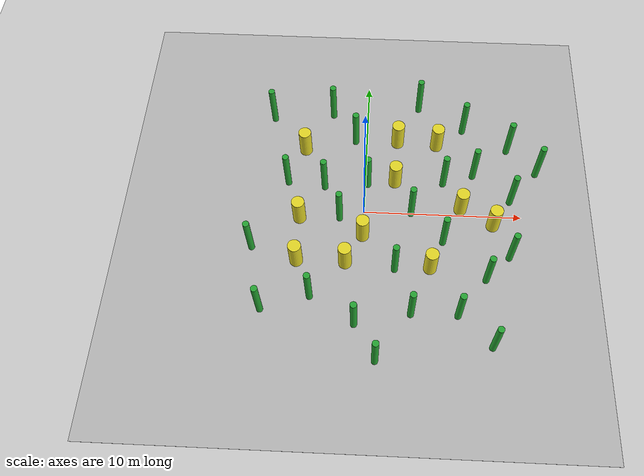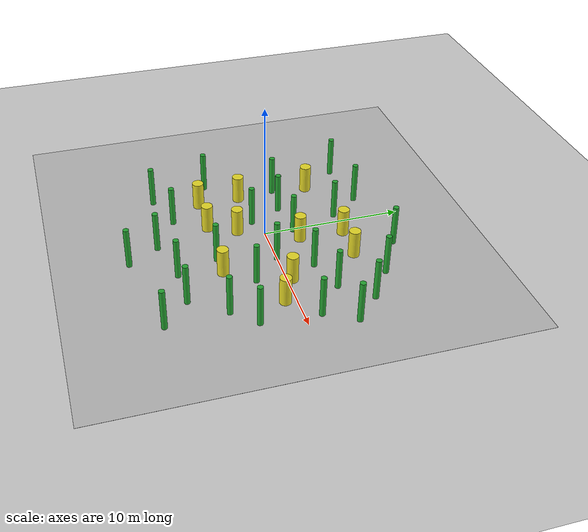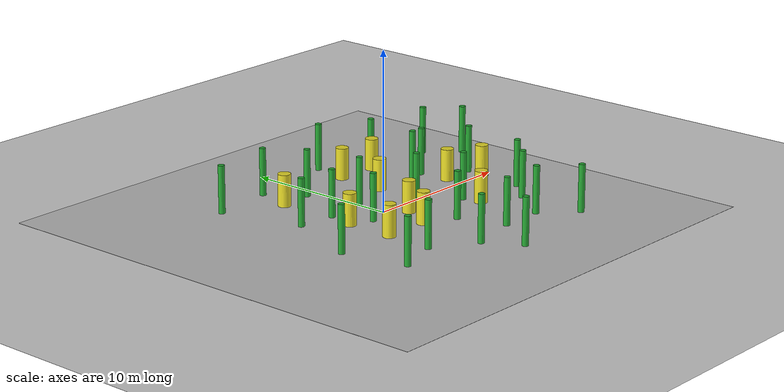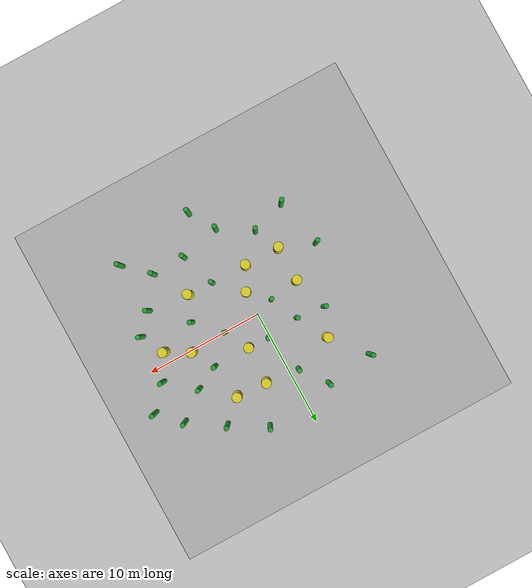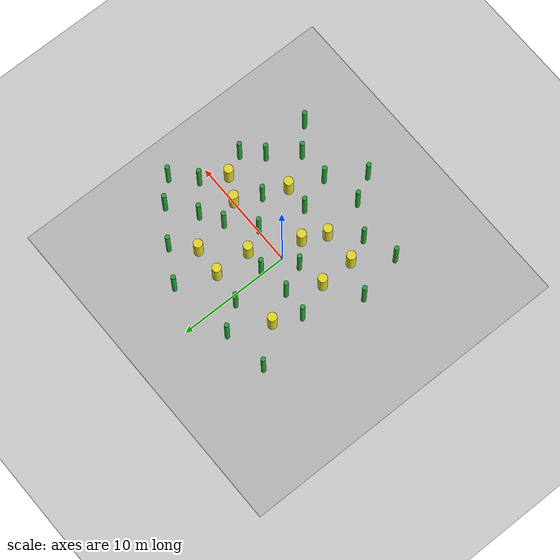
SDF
<sdf version="1.7">
 <world name="default">
  <physics type="ode">
   <ode>
    <solver>
     <type>quick</type>
     <iters>10</iters>
     <sor>1.3</sor>
     <use_dynamic_moi_rescaling>0</use_dynamic_moi_rescaling>
    </solver>
    <constraints>
     <cfm>0</cfm>
     <erp>0.2</erp>
     <contact_max_correcting_vel>100</contact_max_correcting_vel>
     <contact_surface_layer>0.001</contact_surface_layer>
    </constraints>
   </ode>
   <max_step_size>0.004</max_step_size>
   <real_time_factor>1</real_time_factor>
   <real_time_update_rate>250</real_time_update_rate>
  </physics>
  <light name="sun" type="directional">
   <cast_shadows>0</cast_shadows>
   <pose>0 0 100 0 -0 0</pose>
   <diffuse>0.8 0.8 0.8 1</diffuse>
   <specular>0.9 0.9 0.9 1</specular>
   <attenuation>
    <range>1000</range>
    <constant>0.9</constant>
    <linear>0.01</linear>
    <quadratic>0.001</quadratic>
   </attenuation>
   <direction>0.2 0.2 -0.9</direction>
   <spot><inner_angle>0</inner_angle><outer_angle>0</outer_angle><falloff>0</falloff></spot>
  </light>
  <model name="ground_plane">
   <static>1</static>
   <link name="link">
    <collision name="collision">
     <geometry><plane><normal>0 0 1</normal><size>100 100</size></plane></geometry>
     <surface><friction><ode><mu>100</mu><mu2>50</mu2></ode></friction></surface>
    </collision>
    <visual name="visual">
     <cast_shadows>0</cast_shadows>
     <geometry><plane><normal>0 0 1</normal><size>100 100</size></plane></geometry>
     <material>
      <script><uri>file://media/materials/scripts/gazebo.material</uri><name>Gazebo/Grey</name></script>
     </material>
    </visual>
   </link>
  </model>
  <model name="texture">
   <pose>-0.49277 -0.107232 0 0 -0 0</pose>
   <static>1</static>
   <link name="prometheus_logo">
    <visual name="visual">
     <cast_shadows>0</cast_shadows>
     <geometry><box><size>30 30 0.01</size></box></geometry>
     <material>
      <script><uri>model://prometheus_texture/texture.material</uri><name>prometheus_logo2</name></script>
     </material>
    </visual>
   </link>
  </model>
  <model name="cylinder1">
   <frame name="obs_cylinder_small::__model__" attached_to="obs_cylinder_small::link">
    <pose relative_to="__model__">3 0 1.5 0 -0 0</pose>
   </frame>
   <link name="obs_cylinder_small::link">
    <inertial><mass>1</mass></inertial>
    <pose relative_to="obs_cylinder_small::__model__">0 0 0 0 -0 0</pose>
    <visual name="visual">
     <geometry><cylinder><radius>0.2</radius><length>3</length></cylinder></geometry>
     <material>
      <script><name>Gazebo/Green</name><uri>file://media/materials/scripts/gazebo.material</uri></script>
     </material>
    </visual>
    <collision name="collision">
     <geometry><cylinder><radius>0.25</radius><length>3</length></cylinder></geometry>
    </collision>
   </link>
   <static>1</static>
  </model>
  <model name="cylinder7">
   <frame name="obs_cylinder_small::__model__" attached_to="obs_cylinder_small::link">
    <pose relative_to="__model__">7 3 1.5 0 -0 0</pose>
   </frame>
   <link name="obs_cylinder_small::link">
    <inertial><mass>1</mass></inertial>
    <pose relative_to="obs_cylinder_small::__model__">0 0 0 0 -0 0</pose>
    <visual name="visual">
     <geometry><cylinder><radius>0.2</radius><length>3</length></cylinder></geometry>
     <material>
      <script><name>Gazebo/Green</name><uri>file://media/materials/scripts/gazebo.material</uri></script>
     </material>
    </visual>
    <collision name="collision">
     <geometry><cylinder><radius>0.25</radius><length>3</length></cylinder></geometry>
    </collision>
   </link>
   <static>1</static>
  </model>
  <model name="cylinder8">
   <pose>0.219522 1.75082 0 0 -0 0</pose>
   <frame name="obs_cylinder_small::__model__" attached_to="obs_cylinder_small::link">
    <pose relative_to="__model__">9 3 2 0 -0 0</pose>
   </frame>
   <link name="obs_cylinder_small::link">
    <inertial><mass>1</mass></inertial>
    <pose relative_to="obs_cylinder_small::__model__">0 0 0 0 -0 0</pose>
    <visual name="visual">
     <geometry><cylinder><radius>0.2</radius><length>3</length></cylinder></geometry>
     <material>
      <script><name>Gazebo/Green</name><uri>file://media/materials/scripts/gazebo.material</uri></script>
     </material>
    </visual>
    <collision name="collision">
     <geometry><cylinder><radius>0.25</radius><length>3</length></cylinder></geometry>
    </collision>
   </link>
   <static>1</static>
  </model>
  <model name="cylinder9">
   <frame name="obs_cylinder_small::__model__" attached_to="obs_cylinder_small::link">
    <pose relative_to="__model__">11 3 2 0 -0 0</pose>
   </frame>
   <link name="obs_cylinder_small::link">
    <inertial><mass>1</mass></inertial>
    <pose relative_to="obs_cylinder_small::__model__">0 0 0 0 -0 0</pose>
    <visual name="visual">
     <geometry><cylinder><radius>0.2</radius><length>3</length></cylinder></geometry>
     <material>
      <script><name>Gazebo/Green</name><uri>file://media/materials/scripts/gazebo.material</uri></script>
     </material>
    </visual>
    <collision name="collision">
     <geometry><cylinder><radius>0.25</radius><length>3</length></cylinder></geometry>
    </collision>
   </link>
   <static>1</static>
  </model>
  <model name="cylinder2">
   <frame name="obs_cylinder_small::__model__" attached_to="obs_cylinder_small::link">
    <pose relative_to="__model__">5 2 2 0 -0 0</pose>
   </frame>
   <link name="obs_cylinder_small::link">
    <inertial><mass>1</mass></inertial>
    <pose relative_to="obs_cylinder_small::__model__">0 0 0 0 -0 0</pose>
    <visual name="visual">
     <geometry><cylinder><radius>0.2</radius><length>3</length></cylinder></geometry>
     <material>
      <script><name>Gazebo/Green</name><uri>file://media/materials/scripts/gazebo.material</uri></script>
     </material>
    </visual>
    <collision name="collision">
     <geometry><cylinder><radius>0.25</radius><length>3</length></cylinder></geometry>
    </collision>
   </link>
   <static>1</static>
  </model>
  <model name="cylinder3">
   <frame name="obs_cylinder_small::__model__" attached_to="obs_cylinder_small::link">
    <pose relative_to="__model__">5 -2 1.5 0 -0 0</pose>
   </frame>
   <link name="obs_cylinder_small::link">
    <inertial><mass>1</mass></inertial>
    <pose relative_to="obs_cylinder_small::__model__">0 0 0 0 -0 0</pose>
    <visual name="visual">
     <geometry><cylinder><radius>0.2</radius><length>3</length></cylinder></geometry>
     <material>
      <script><name>Gazebo/Green</name><uri>file://media/materials/scripts/gazebo.material</uri></script>
     </material>
    </visual>
    <collision name="collision">
     <geometry><cylinder><radius>0.25</radius><length>3</length></cylinder></geometry>
    </collision>
   </link>
   <static>1</static>
  </model>
  <model name="cylinder4">
   <pose>-0.610917 1.75252 0 0 -0 0</pose>
   <frame name="obs_cylinder_small::__model__" attached_to="obs_cylinder_small::link">
    <pose relative_to="__model__">-2 0 1.5 0 -0 0</pose>
   </frame>
   <link name="obs_cylinder_small::link">
    <inertial><mass>1</mass></inertial>
    <pose relative_to="obs_cylinder_small::__model__">0 0 0 0 -0 0</pose>
    <visual name="visual">
     <geometry><cylinder><radius>0.2</radius><length>3</length></cylinder></geometry>
     <material>
      <script><name>Gazebo/Green</name><uri>file://media/materials/scripts/gazebo.material</uri></script>
     </material>
    </visual>
    <collision name="collision">
     <geometry><cylinder><radius>0.25</radius><length>3</length></cylinder></geometry>
    </collision>
   </link>
   <static>1</static>
  </model>
  <model name="cylinder5">
   <frame name="obs_cylinder_small::__model__" attached_to="obs_cylinder_small::link">
    <pose relative_to="__model__">-5 2 1.5 0 -0 0</pose>
   </frame>
   <link name="obs_cylinder_small::link">
    <inertial><mass>1</mass></inertial>
    <pose relative_to="obs_cylinder_small::__model__">0 0 0 0 -0 0</pose>
    <visual name="visual">
     <geometry><cylinder><radius>0.2</radius><length>3</length></cylinder></geometry>
     <material>
      <script><name>Gazebo/Green</name><uri>file://media/materials/scripts/gazebo.material</uri></script>
     </material>
    </visual>
    <collision name="collision">
     <geometry><cylinder><radius>0.25</radius><length>3</length></cylinder></geometry>
    </collision>
   </link>
   <static>1</static>
  </model>
  <model name="cylinder6">
   <pose>-1.88915 -0.843202 0 0 -0 0</pose>
   <frame name="obs_cylinder_small::__model__" attached_to="obs_cylinder_small::link">
    <pose relative_to="__model__">-5 -2 1.5 0 -0 0</pose>
   </frame>
   <link name="obs_cylinder_small::link">
    <inertial><mass>1</mass></inertial>
    <pose relative_to="obs_cylinder_small::__model__">0 0 0 0 -0 0</pose>
    <visual name="visual">
     <geometry><cylinder><radius>0.2</radius><length>3</length></cylinder></geometry>
     <material>
      <script><name>Gazebo/Green</name><uri>file://media/materials/scripts/gazebo.material</uri></script>
     </material>
    </visual>
    <collision name="collision">
     <geometry><cylinder><radius>0.25</radius><length>3</length></cylinder></geometry>
    </collision>
   </link>
   <static>1</static>
  </model>
  <model name="cylinder4_clone_0">
   <pose>-0.391285 3.60032 0 0 -0 0</pose>
   <frame name="obs_cylinder_small::__model__" attached_to="obs_cylinder_small::link">
    <pose relative_to="__model__">-1.97992 4.00703 1.5 0 -0 0</pose>
   </frame>
   <link name="obs_cylinder_small::link">
    <inertial><mass>1</mass></inertial>
    <pose relative_to="obs_cylinder_small::__model__">0 0 0 0 -0 0</pose>
    <visual name="visual">
     <geometry><cylinder><radius>0.2</radius><length>3</length></cylinder></geometry>
     <material>
      <script><name>Gazebo/Green</name><uri>file://media/materials/scripts/gazebo.material</uri></script>
     </material>
    </visual>
    <collision name="collision">
     <geometry><cylinder><radius>0.25</radius><length>3</length></cylinder></geometry>
    </collision>
   </link>
   <static>1</static>
  </model>
  <model name="cylinder4_clone_1">
   <pose>0.432096 1.4808 0 0 -0 0</pose>
   <frame name="obs_cylinder_small::__model__" attached_to="obs_cylinder_small::link">
    <pose relative_to="__model__">-1.9564 -2.0159 1.5 0 -0 0</pose>
   </frame>
   <link name="obs_cylinder_small::link">
    <inertial><mass>1</mass></inertial>
    <pose relative_to="obs_cylinder_small::__model__">0 0 0 0 -0 0</pose>
    <visual name="visual">
     <geometry><cylinder><radius>0.2</radius><length>3</length></cylinder></geometry>
     <material>
      <script><name>Gazebo/Green</name><uri>file://media/materials/scripts/gazebo.material</uri></script>
     </material>
    </visual>
    <collision name="collision">
     <geometry><cylinder><radius>0.25</radius><length>3</length></cylinder></geometry>
    </collision>
   </link>
   <static>1</static>
  </model>
  <model name="cylinder4_clone_10">
   <pose>0.592309 -0.4648 0 0 -0 0</pose>
   <frame name="obs_cylinder_small::__model__" attached_to="obs_cylinder_small::link">
    <pose relative_to="__model__">7.0065 -4.01751 1.5 0 -0 0</pose>
   </frame>
   <link name="obs_cylinder_small::link">
    <inertial><mass>1</mass></inertial>
    <pose relative_to="obs_cylinder_small::__model__">0 0 0 0 -0 0</pose>
    <visual name="visual">
     <geometry><cylinder><radius>0.2</radius><length>3</length></cylinder></geometry>
     <material>
      <script><name>Gazebo/Green</name><uri>file://media/materials/scripts/gazebo.material</uri></script>
     </material>
    </visual>
    <collision name="collision">
     <geometry><cylinder><radius>0.25</radius><length>3</length></cylinder></geometry>
    </collision>
   </link>
   <static>1</static>
  </model>
  <model name="cylinder4_clone_11">
   <pose>0.261446 1.02957 0 0 -0 0</pose>
   <frame name="obs_cylinder_small::__model__" attached_to="obs_cylinder_small::link">
    <pose relative_to="__model__">9.0654 0.083267 1.5 0 -0 0</pose>
   </frame>
   <link name="obs_cylinder_small::link">
    <inertial><mass>1</mass></inertial>
    <pose relative_to="obs_cylinder_small::__model__">0 0 0 0 -0 0</pose>
    <visual name="visual">
     <geometry><cylinder><radius>0.2</radius><length>3</length></cylinder></geometry>
     <material>
      <script><name>Gazebo/Green</name><uri>file://media/materials/scripts/gazebo.material</uri></script>
     </material>
    </visual>
    <collision name="collision">
     <geometry><cylinder><radius>0.25</radius><length>3</length></cylinder></geometry>
    </collision>
   </link>
   <static>1</static>
  </model>
  <model name="cylinder4_clone_12">
   <frame name="obs_cylinder_small::__model__" attached_to="obs_cylinder_small::link">
    <pose relative_to="__model__">9.0896 -2.91154 1.5 0 -0 0</pose>
   </frame>
   <link name="obs_cylinder_small::link">
    <inertial><mass>1</mass></inertial>
    <pose relative_to="obs_cylinder_small::__model__">0 0 0 0 -0 0</pose>
    <visual name="visual">
     <geometry><cylinder><radius>0.2</radius><length>3</length></cylinder></geometry>
     <material>
      <script><name>Gazebo/Green</name><uri>file://media/materials/scripts/gazebo.material</uri></script>
     </material>
    </visual>
    <collision name="collision">
     <geometry><cylinder><radius>0.25</radius><length>3</length></cylinder></geometry>
    </collision>
   </link>
   <static>1</static>
  </model>
  <model name="cylinder4_clone_13">
   <pose>0.443556 10.4144 0 0 -0 0</pose>
   <frame name="obs_cylinder_small::__model__" attached_to="obs_cylinder_small::link">
    <pose relative_to="__model__">3.01135 -2.03851 1.5 0 -0 0</pose>
   </frame>
   <link name="obs_cylinder_small::link">
    <inertial><mass>1</mass></inertial>
    <pose relative_to="obs_cylinder_small::__model__">0 0 0 0 -0 0</pose>
    <visual name="visual">
     <geometry><cylinder><radius>0.2</radius><length>3</length></cylinder></geometry>
     <material>
      <script><name>Gazebo/Green</name><uri>file://media/materials/scripts/gazebo.material</uri></script>
     </material>
    </visual>
    <collision name="collision">
     <geometry><cylinder><radius>0.25</radius><length>3</length></cylinder></geometry>
    </collision>
   </link>
   <static>1</static>
  </model>
  <model name="cylinder4_clone_14">
   <frame name="obs_cylinder_large::__model__" attached_to="obs_cylinder_large::link">
    <pose relative_to="__model__">2.02671 5.11168 1.5 0 -0 0</pose>
   </frame>
   <link name="obs_cylinder_large::link">
    <inertial><mass>1</mass></inertial>
    <pose relative_to="obs_cylinder_large::__model__">0 0 0 0 -0 0</pose>
    <visual name="visual">
     <geometry><cylinder><radius>0.4</radius><length>2</length></cylinder></geometry>
     <material>
      <script><name>Gazebo/Yellow</name><uri>file://media/materials/scripts/gazebo.material</uri></script>
     </material>
    </visual>
    <collision name="collision">
     <geometry><cylinder><radius>0.25</radius><length>2</length></cylinder></geometry>
    </collision>
   </link>
   <static>1</static>
  </model>
  <model name="cylinder4_clone_15">
   <frame name="obs_cylinder_large::__model__" attached_to="obs_cylinder_large::link">
    <pose relative_to="__model__">2.02671 5.11168 1.5 0 -0 0</pose>
   </frame>
   <link name="obs_cylinder_large::link">
    <inertial><mass>1</mass></inertial>
    <pose relative_to="obs_cylinder_large::__model__">0 0 0 0 -0 0</pose>
    <visual name="visual">
     <geometry><cylinder><radius>0.4</radius><length>2</length></cylinder></geometry>
     <material>
      <script><name>Gazebo/Yellow</name><uri>file://media/materials/scripts/gazebo.material</uri></script>
     </material>
    </visual>
    <collision name="collision">
     <geometry><cylinder><radius>0.25</radius><length>2</length></cylinder></geometry>
    </collision>
   </link>
   <static>1</static>
  </model>
  <model name="cylinder4_clone_16">
   <frame name="obs_cylinder_large::__model__" attached_to="obs_cylinder_large::link">
    <pose relative_to="__model__">-1.00318 -3.92453 1.5 0 -0 0</pose>
   </frame>
   <link name="obs_cylinder_large::link">
    <inertial><mass>1</mass></inertial>
    <pose relative_to="obs_cylinder_large::__model__">0 0 0 0 -0 0</pose>
    <visual name="visual">
     <geometry><cylinder><radius>0.4</radius><length>2</length></cylinder></geometry>
     <material>
      <script><name>Gazebo/Yellow</name><uri>file://media/materials/scripts/gazebo.material</uri></script>
     </material>
    </visual>
    <collision name="collision">
     <geometry><cylinder><radius>0.25</radius><length>2</length></cylinder></geometry>
    </collision>
   </link>
   <static>1</static>
  </model>
  <model name="cylinder4_clone_17">
   <frame name="obs_cylinder_large::__model__" attached_to="obs_cylinder_large::link">
    <pose relative_to="__model__">-3.97554 -3.89536 1.5 0 -0 0</pose>
   </frame>
   <link name="obs_cylinder_large::link">
    <inertial><mass>1</mass></inertial>
    <pose relative_to="obs_cylinder_large::__model__">0 0 0 0 -0 0</pose>
    <visual name="visual">
     <geometry><cylinder><radius>0.4</radius><length>2</length></cylinder></geometry>
     <material>
      <script><name>Gazebo/Yellow</name><uri>file://media/materials/scripts/gazebo.material</uri></script>
     </material>
    </visual>
    <collision name="collision">
     <geometry><cylinder><radius>0.25</radius><length>2</length></cylinder></geometry>
    </collision>
   </link>
   <static>1</static>
  </model>
  <model name="cylinder4_clone_18">
   <frame name="obs_cylinder_large::__model__" attached_to="obs_cylinder_large::link">
    <pose relative_to="__model__">-4.01198 -0.900726 1.5 0 -0 0</pose>
   </frame>
   <link name="obs_cylinder_large::link">
    <inertial><mass>1</mass></inertial>
    <pose relative_to="obs_cylinder_large::__model__">0 0 0 0 -0 0</pose>
    <visual name="visual">
     <geometry><cylinder><radius>0.4</radius><length>2</length></cylinder></geometry>
     <material>
      <script><name>Gazebo/Yellow</name><uri>file://media/materials/scripts/gazebo.material</uri></script>
     </material>
    </visual>
    <collision name="collision">
     <geometry><cylinder><radius>0.25</radius><length>2</length></cylinder></geometry>
    </collision>
   </link>
   <static>1</static>
  </model>
  <model name="cylinder4_clone_19">
   <frame name="obs_cylinder_large::__model__" attached_to="obs_cylinder_large::link">
    <pose relative_to="__model__">-3.99798 4.28559 1.5 0 -0 0</pose>
   </frame>
   <link name="obs_cylinder_large::link">
    <inertial><mass>1</mass></inertial>
    <pose relative_to="obs_cylinder_large::__model__">0 0 0 0 -0 0</pose>
    <visual name="visual">
     <geometry><cylinder><radius>0.4</radius><length>2</length></cylinder></geometry>
     <material>
      <script><name>Gazebo/Yellow</name><uri>file://media/materials/scripts/gazebo.material</uri></script>
     </material>
    </visual>
    <collision name="collision">
     <geometry><cylinder><radius>0.25</radius><length>2</length></cylinder></geometry>
    </collision>
   </link>
   <static>1</static>
  </model>
  <model name="cylinder4_clone_3">
   <frame name="obs_cylinder_large::__model__" attached_to="obs_cylinder_large::link">
    <pose relative_to="__model__">-0.02147 -2 1.5 0 -0 0</pose>
   </frame>
   <link name="obs_cylinder_large::link">
    <inertial><mass>1</mass></inertial>
    <pose relative_to="obs_cylinder_large::__model__">0 0 0 0 -0 0</pose>
    <visual name="visual">
     <geometry><cylinder><radius>0.4</radius><length>2</length></cylinder></geometry>
     <material>
      <script><name>Gazebo/Yellow</name><uri>file://media/materials/scripts/gazebo.material</uri></script>
     </material>
    </visual>
    <collision name="collision">
     <geometry><cylinder><radius>0.25</radius><length>2</length></cylinder></geometry>
    </collision>
   </link>
   <static>1</static>
  </model>
  <model name="cylinder4_clone_4">
   <frame name="obs_cylinder_large::__model__" attached_to="obs_cylinder_large::link">
    <pose relative_to="__model__">1.91528 1.99383 1.5 0 -0 0</pose>
   </frame>
   <link name="obs_cylinder_large::link">
    <inertial><mass>1</mass></inertial>
    <pose relative_to="obs_cylinder_large::__model__">0 0 0 0 -0 0</pose>
    <visual name="visual">
     <geometry><cylinder><radius>0.4</radius><length>2</length></cylinder></geometry>
     <material>
      <script><name>Gazebo/Yellow</name><uri>file://media/materials/scripts/gazebo.material</uri></script>
     </material>
    </visual>
    <collision name="collision">
     <geometry><cylinder><radius>0.25</radius><length>2</length></cylinder></geometry>
    </collision>
   </link>
   <static>1</static>
  </model>
  <model name="cylinder4_clone_5">
   <pose>0.616565 0.997768 0 0 -0 0</pose>
   <frame name="obs_cylinder_large::__model__" attached_to="obs_cylinder_large::link">
    <pose relative_to="__model__">3.98158 3.97316 1.5 0 -0 0</pose>
   </frame>
   <link name="obs_cylinder_large::link">
    <inertial><mass>1</mass></inertial>
    <pose relative_to="obs_cylinder_large::__model__">0 0 0 0 -0 0</pose>
    <visual name="visual">
     <geometry><cylinder><radius>0.4</radius><length>2</length></cylinder></geometry>
     <material>
      <script><name>Gazebo/Yellow</name><uri>file://media/materials/scripts/gazebo.material</uri></script>
     </material>
    </visual>
    <collision name="collision">
     <geometry><cylinder><radius>0.25</radius><length>2</length></cylinder></geometry>
    </collision>
   </link>
   <static>1</static>
  </model>
  <model name="cylinder3_clone">
   <frame name="obs_cylinder_large::__model__" attached_to="obs_cylinder_large::link">
    <pose relative_to="__model__">6.07287 0.13588 1.5 0 -0 0</pose>
   </frame>
   <link name="obs_cylinder_large::link">
    <inertial><mass>1</mass></inertial>
    <pose relative_to="obs_cylinder_large::__model__">0 0 0 0 -0 0</pose>
    <visual name="visual">
     <geometry><cylinder><radius>0.4</radius><length>2</length></cylinder></geometry>
     <material>
      <script><name>Gazebo/Yellow</name><uri>file://media/materials/scripts/gazebo.material</uri></script>
     </material>
    </visual>
    <collision name="collision">
     <geometry><cylinder><radius>0.25</radius><length>2</length></cylinder></geometry>
    </collision>
   </link>
   <static>1</static>
  </model>
  <model name="cylinder3_clone_0">
   <frame name="obs_cylinder_large::__model__" attached_to="obs_cylinder_large::link">
    <pose relative_to="__model__">4.15022 -4.06495 1.5 0 -0 0</pose>
   </frame>
   <link name="obs_cylinder_large::link">
    <inertial><mass>1</mass></inertial>
    <pose relative_to="obs_cylinder_large::__model__">0 0 0 0 -0 0</pose>
    <visual name="visual">
     <geometry><cylinder><radius>0.4</radius><length>2</length></cylinder></geometry>
     <material>
      <script><name>Gazebo/Yellow</name><uri>file://media/materials/scripts/gazebo.material</uri></script>
     </material>
    </visual>
    <collision name="collision">
     <geometry><cylinder><radius>0.25</radius><length>2</length></cylinder></geometry>
    </collision>
   </link>
   <static>1</static>
  </model>
  <model name="cylinder3_clone_1">
   <frame name="obs_cylinder_large::__model__" attached_to="obs_cylinder_large::link">
    <pose relative_to="__model__">8.06445 -0.95966 1.5 0 -0 0</pose>
   </frame>
   <link name="obs_cylinder_large::link">
    <inertial><mass>1</mass></inertial>
    <pose relative_to="obs_cylinder_large::__model__">0 0 0 0 -0 0</pose>
    <visual name="visual">
     <geometry><cylinder><radius>0.4</radius><length>2</length></cylinder></geometry>
     <material>
      <script><name>Gazebo/Yellow</name><uri>file://media/materials/scripts/gazebo.material</uri></script>
     </material>
    </visual>
    <collision name="collision">
     <geometry><cylinder><radius>0.25</radius><length>2</length></cylinder></geometry>
    </collision>
   </link>
   <static>1</static>
  </model>
  <model name="cylinder3_clone_10">
   <frame name="obs_cylinder_small::__model__" attached_to="obs_cylinder_small::link">
    <pose relative_to="__model__">3.03343 -6.9094 1.5 0 -0 0</pose>
   </frame>
   <link name="obs_cylinder_small::link">
    <inertial><mass>1</mass></inertial>
    <pose relative_to="obs_cylinder_small::__model__">0 0 0 0 -0 0</pose>
    <visual name="visual">
     <geometry><cylinder><radius>0.2</radius><length>3</length></cylinder></geometry>
     <material>
      <script><name>Gazebo/Green</name><uri>file://media/materials/scripts/gazebo.material</uri></script>
     </material>
    </visual>
    <collision name="collision">
     <geometry><cylinder><radius>0.25</radius><length>3</length></cylinder></geometry>
    </collision>
   </link>
   <static>1</static>
  </model>
  <model name="cylinder3_clone_11">
   <pose>0.67241 -1.87382 0 0 -0 0</pose>
   <frame name="obs_cylinder_small::__model__" attached_to="obs_cylinder_small::link">
    <pose relative_to="__model__">-0.97445 -5.80554 1.5 0 -0 0</pose>
   </frame>
   <link name="obs_cylinder_small::link">
    <inertial><mass>1</mass></inertial>
    <pose relative_to="obs_cylinder_small::__model__">0 0 0 0 -0 0</pose>
    <visual name="visual">
     <geometry><cylinder><radius>0.2</radius><length>3</length></cylinder></geometry>
     <material>
      <script><name>Gazebo/Green</name><uri>file://media/materials/scripts/gazebo.material</uri></script>
     </material>
    </visual>
    <collision name="collision">
     <geometry><cylinder><radius>0.25</radius><length>3</length></cylinder></geometry>
    </collision>
   </link>
   <static>1</static>
  </model>
  <model name="cylinder3_clone_12">
   <frame name="obs_cylinder_small::__model__" attached_to="obs_cylinder_small::link">
    <pose relative_to="__model__">-3.04238 -6.01581 1.5 0 -0 0</pose>
   </frame>
   <link name="obs_cylinder_small::link">
    <inertial><mass>1</mass></inertial>
    <pose relative_to="obs_cylinder_small::__model__">0 0 0 0 -0 0</pose>
    <visual name="visual">
     <geometry><cylinder><radius>0.2</radius><length>3</length></cylinder></geometry>
     <material>
      <script><name>Gazebo/Green</name><uri>file://media/materials/scripts/gazebo.material</uri></script>
     </material>
    </visual>
    <collision name="collision">
     <geometry><cylinder><radius>0.25</radius><length>3</length></cylinder></geometry>
    </collision>
   </link>
   <static>1</static>
  </model>
  <model name="cylinder3_clone_13">
   <pose>-0.952713 -1.93238 0 0 -0 0</pose>
   <frame name="obs_cylinder_small::__model__" attached_to="obs_cylinder_small::link">
    <pose relative_to="__model__">-4.97933 -5.0259 1.5 0 -0 0</pose>
   </frame>
   <link name="obs_cylinder_small::link">
    <inertial><mass>1</mass></inertial>
    <pose relative_to="obs_cylinder_small::__model__">0 0 0 0 -0 0</pose>
    <visual name="visual">
     <geometry><cylinder><radius>0.2</radius><length>3</length></cylinder></geometry>
     <material>
      <script><name>Gazebo/Green</name><uri>file://media/materials/scripts/gazebo.material</uri></script>
     </material>
    </visual>
    <collision name="collision">
     <geometry><cylinder><radius>0.25</radius><length>3</length></cylinder></geometry>
    </collision>
   </link>
   <static>1</static>
  </model>
  <model name="cylinder3_clone_14">
   <pose>0.448652 1.63 0 0 -0 0</pose>
   <frame name="obs_cylinder_small::__model__" attached_to="obs_cylinder_small::link">
    <pose relative_to="__model__">5.96757 5.00455 1.5 0 -0 0</pose>
   </frame>
   <link name="obs_cylinder_small::link">
    <inertial><mass>1</mass></inertial>
    <pose relative_to="obs_cylinder_small::__model__">0 0 0 0 -0 0</pose>
    <visual name="visual">
     <geometry><cylinder><radius>0.2</radius><length>3</length></cylinder></geometry>
     <material>
      <script><name>Gazebo/Green</name><uri>file://media/materials/scripts/gazebo.material</uri></script>
     </material>
    </visual>
    <collision name="collision">
     <geometry><cylinder><radius>0.25</radius><length>3</length></cylinder></geometry>
    </collision>
   </link>
   <static>1</static>
  </model>
  <model name="cylinder3_clone_2">
   <pose>-13.4004 9.08193 0 0 -0 0</pose>
   <frame name="obs_cylinder_small::__model__" attached_to="obs_cylinder_small::link">
    <pose relative_to="__model__">7.01908 -1.94151 1.5 0 -0 0</pose>
   </frame>
   <link name="obs_cylinder_small::link">
    <inertial><mass>1</mass></inertial>
    <pose relative_to="obs_cylinder_small::__model__">0 0 0 0 -0 0</pose>
    <visual name="visual">
     <geometry><cylinder><radius>0.2</radius><length>3</length></cylinder></geometry>
     <material>
      <script><name>Gazebo/Green</name><uri>file://media/materials/scripts/gazebo.material</uri></script>
     </material>
    </visual>
    <collision name="collision">
     <geometry><cylinder><radius>0.25</radius><length>3</length></cylinder></geometry>
    </collision>
   </link>
   <static>1</static>
  </model>
  <model name="cylinder3_clone_3">
   <frame name="obs_cylinder_small::__model__" attached_to="obs_cylinder_small::link">
    <pose relative_to="__model__">2.02255 -4.00149 1.5 0 -0 0</pose>
   </frame>
   <link name="obs_cylinder_small::link">
    <inertial><mass>1</mass></inertial>
    <pose relative_to="obs_cylinder_small::__model__">0 0 0 0 -0 0</pose>
    <visual name="visual">
     <geometry><cylinder><radius>0.2</radius><length>3</length></cylinder></geometry>
     <material>
      <script><name>Gazebo/Green</name><uri>file://media/materials/scripts/gazebo.material</uri></script>
     </material>
    </visual>
    <collision name="collision">
     <geometry><cylinder><radius>0.25</radius><length>3</length></cylinder></geometry>
    </collision>
   </link>
   <static>1</static>
  </model>
  <model name="cylinder3_clone_4">
   <frame name="obs_cylinder_small::__model__" attached_to="obs_cylinder_small::link">
    <pose relative_to="__model__">0.17873 2.05724 1.5 0 -0 0</pose>
   </frame>
   <link name="obs_cylinder_small::link">
    <inertial><mass>1</mass></inertial>
    <pose relative_to="obs_cylinder_small::__model__">0 0 0 0 -0 0</pose>
    <visual name="visual">
     <geometry><cylinder><radius>0.2</radius><length>3</length></cylinder></geometry>
     <material>
      <script><name>Gazebo/Green</name><uri>file://media/materials/scripts/gazebo.material</uri></script>
     </material>
    </visual>
    <collision name="collision">
     <geometry><cylinder><radius>0.25</radius><length>3</length></cylinder></geometry>
    </collision>
   </link>
   <static>1</static>
  </model>
  <model name="cylinder3_clone_5">
   <pose>1.09508 3.34742 0 0 -0 0</pose>
   <frame name="obs_cylinder_small::__model__" attached_to="obs_cylinder_small::link">
    <pose relative_to="__model__">-1.85729 2.09778 1.5 0 -0 0</pose>
   </frame>
   <link name="obs_cylinder_small::link">
    <inertial><mass>1</mass></inertial>
    <pose relative_to="obs_cylinder_small::__model__">0 0 0 0 -0 0</pose>
    <visual name="visual">
     <geometry><cylinder><radius>0.2</radius><length>3</length></cylinder></geometry>
     <material>
      <script><name>Gazebo/Green</name><uri>file://media/materials/scripts/gazebo.material</uri></script>
     </material>
    </visual>
    <collision name="collision">
     <geometry><cylinder><radius>0.25</radius><length>3</length></cylinder></geometry>
    </collision>
   </link>
   <static>1</static>
  </model>
  <model name="cylinder3_clone_7">
   <pose>-0.21185 -1.00801 0 0 -0 0</pose>
   <frame name="obs_cylinder_small::__model__" attached_to="obs_cylinder_small::link">
    <pose relative_to="__model__">6.05648 -5.87728 1.5 0 -0 0</pose>
   </frame>
   <link name="obs_cylinder_small::link">
    <inertial><mass>1</mass></inertial>
    <pose relative_to="obs_cylinder_small::__model__">0 0 0 0 -0 0</pose>
    <visual name="visual">
     <geometry><cylinder><radius>0.2</radius><length>3</length></cylinder></geometry>
     <material>
      <script><name>Gazebo/Green</name><uri>file://media/materials/scripts/gazebo.material</uri></script>
     </material>
    </visual>
    <collision name="collision">
     <geometry><cylinder><radius>0.25</radius><length>3</length></cylinder></geometry>
    </collision>
   </link>
   <static>1</static>
  </model>
  <model name="cylinder3_clone_8">
   <pose>3.69362 -2.85243 0 0 -0 0</pose>
   <frame name="obs_cylinder_small::__model__" attached_to="obs_cylinder_small::link">
    <pose relative_to="__model__">4.12375 -5.90525 1.5 0 -0 0</pose>
   </frame>
   <link name="obs_cylinder_small::link">
    <inertial><mass>1</mass></inertial>
    <pose relative_to="obs_cylinder_small::__model__">0 0 0 0 -0 0</pose>
    <visual name="visual">
     <geometry><cylinder><radius>0.2</radius><length>3</length></cylinder></geometry>
     <material>
      <script><name>Gazebo/Green</name><uri>file://media/materials/scripts/gazebo.material</uri></script>
     </material>
    </visual>
    <collision name="collision">
     <geometry><cylinder><radius>0.25</radius><length>3</length></cylinder></geometry>
    </collision>
   </link>
   <static>1</static>
  </model>
  <model name="cylinder3_clone_9">
   <pose>-0.032085 -4.07171 0 0 -0 0</pose>
   <frame name="obs_cylinder_small::__model__" attached_to="obs_cylinder_small::link">
    <pose relative_to="__model__">1.03519 -5.79704 1.5 0 -0 0</pose>
   </frame>
   <link name="obs_cylinder_small::link">
    <inertial><mass>1</mass></inertial>
    <pose relative_to="obs_cylinder_small::__model__">0 0 0 0 -0 0</pose>
    <visual name="visual">
     <geometry><cylinder><radius>0.2</radius><length>3</length></cylinder></geometry>
     <material>
      <script><name>Gazebo/Green</name><uri>file://media/materials/scripts/gazebo.material</uri></script>
     </material>
    </visual>
    <collision name="collision">
     <geometry><cylinder><radius>0.25</radius><length>3</length></cylinder></geometry>
    </collision>
   </link>
   <static>1</static>
  </model>
  <gravity>0 0 -9.8066</gravity>
  <magnetic_field>6e-06 2.3e-05 -4.2e-05</magnetic_field>
  <atmosphere type="adiabatic"/>
  <scene><ambient>0.4 0.4 0.4 1</ambient><background>0.7 0.7 0.7 1</background><shadows>1</shadows></scene>
  <spherical_coordinates>
   <surface_model>EARTH_WGS84</surface_model>
   <latitude_deg>0</latitude_deg>
   <longitude_deg>0</longitude_deg>
   <elevation>0</elevation>
   <heading_deg>0</heading_deg>
  </spherical_coordinates>
 </world>
</sdf>
